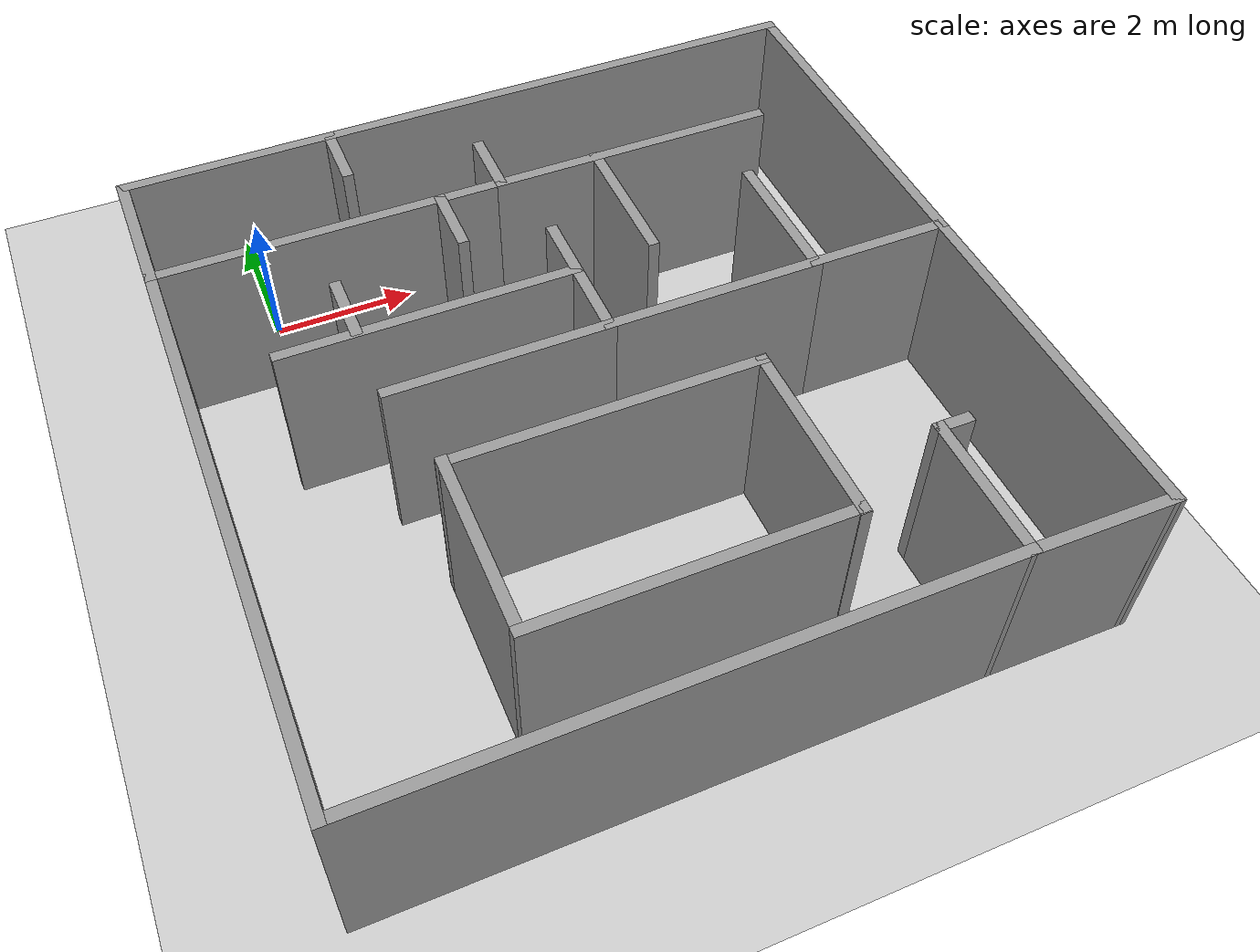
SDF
<sdf version="1.7">
 <world name="default">
  <light name="sun" type="directional">
   <pose>0 0 10 0 -0 0</pose>
   <diffuse>0.8 0.8 0.8 1</diffuse>
   <specular>0.2 0.2 0.2 1</specular>
   <attenuation>
    <range>1000</range>
    <constant>0.9</constant>
    <linear>0.01</linear>
    <quadratic>0.001</quadratic>
   </attenuation>
   <direction>-0.5 0.1 -0.9</direction>
   <spot><inner_angle>0</inner_angle><outer_angle>0</outer_angle><falloff>0</falloff></spot>
  </light>
  <model name="ground_plane">
   <static>1</static>
   <link name="link">
    <collision name="collision">
     <geometry><plane><normal>0 0 1</normal><size>100 100</size></plane></geometry>
     <surface><friction><ode><mu>100</mu><mu2>50</mu2></ode></friction></surface>
    </collision>
    <visual name="visual">
     <cast_shadows>0</cast_shadows>
     <geometry><plane><normal>0 0 1</normal><size>100 100</size></plane></geometry>
     <material>
      <script><uri>file://media/materials/scripts/gazebo.material</uri><name>Gazebo/Grey</name></script>
     </material>
    </visual>
   </link>
  </model>
  <gravity>0 0 -9.8</gravity>
  <magnetic_field>6e-06 2.3e-05 -4.2e-05</magnetic_field>
  <atmosphere type="adiabatic"/>
  <physics type="ode">
   <max_step_size>0.001</max_step_size>
   <real_time_factor>1</real_time_factor>
   <real_time_update_rate>1000</real_time_update_rate>
  </physics>
  <scene><ambient>0.4 0.4 0.4 1</ambient><background>0.7 0.7 0.7 1</background><shadows>1</shadows></scene>
  <spherical_coordinates>
   <surface_model>EARTH_WGS84</surface_model>
   <latitude_deg>0</latitude_deg>
   <longitude_deg>0</longitude_deg>
   <elevation>0</elevation>
   <heading_deg>0</heading_deg>
  </spherical_coordinates>
  <model name="Map">
   <pose>3.35876 -3.9583 0 0 0 -1.5697</pose>
   <link name="Wall_10">
    <collision name="Wall_10_Collision">
     <geometry><box><size>3 0.15 2.5</size></box></geometry>
     <pose>0 0 1.25 0 -0 0</pose>
    </collision>
    <visual name="Wall_10_Visual">
     <pose>0 0 1.25 0 -0 0</pose>
     <geometry><box><size>3 0.15 2.5</size></box></geometry>
     <material>
      <script><uri>file://media/materials/scripts/gazebo.material</uri><name>Gazebo/Grey</name></script>
      <ambient>1 1 1 1</ambient>
     </material>
     <meta><layer>0</layer></meta>
    </visual>
    <pose>-0.000462 1.57457 0 0 -0 -1.5708</pose>
   </link>
   <link name="Wall_11">
    <collision name="Wall_11_Collision">
     <geometry><box><size>2 0.15 2.5</size></box></geometry>
     <pose>0 0 1.25 0 -0 0</pose>
    </collision>
    <visual name="Wall_11_Visual">
     <pose>0 0 1.25 0 -0 0</pose>
     <geometry><box><size>2 0.15 2.5</size></box></geometry>
     <material>
      <script><uri>file://media/materials/scripts/gazebo.material</uri><name>Gazebo/Grey</name></script>
      <ambient>1 1 1 1</ambient>
     </material>
     <meta><layer>0</layer></meta>
    </visual>
    <pose>-0.925462 0.149572 0 0 -0 3.14159</pose>
   </link>
   <link name="Wall_13">
    <collision name="Wall_13_Collision">
     <geometry><box><size>3 0.15 2.5</size></box></geometry>
     <pose>0 0 1.25 0 -0 0</pose>
    </collision>
    <visual name="Wall_13_Visual">
     <pose>0 0 1.25 0 -0 0</pose>
     <geometry><box><size>3 0.15 2.5</size></box></geometry>
     <material>
      <script><uri>file://media/materials/scripts/gazebo.material</uri><name>Gazebo/Grey</name></script>
      <ambient>1 1 1 1</ambient>
     </material>
     <meta><layer>0</layer></meta>
    </visual>
    <pose>-0.000462 -1.27543 0 0 -0 -1.5708</pose>
   </link>
   <link name="Wall_15">
    <collision name="Wall_15_Collision">
     <geometry><box><size>2 0.15 2.5</size></box></geometry>
     <pose>0 0 1.25 0 -0 0</pose>
    </collision>
    <visual name="Wall_15_Visual">
     <pose>0 0 1.25 0 -0 0</pose>
     <geometry><box><size>2 0.15 2.5</size></box></geometry>
     <material>
      <script><uri>file://media/materials/scripts/gazebo.material</uri><name>Gazebo/Grey</name></script>
      <ambient>1 1 1 1</ambient>
     </material>
     <meta><layer>0</layer></meta>
    </visual>
    <pose>-3.92546 -4.85043 0 0 -0 0</pose>
   </link>
   <link name="Wall_16">
    <collision name="Wall_16_Collision">
     <geometry><box><size>4 0.15 2.5</size></box></geometry>
     <pose>0 0 1.25 0 -0 0</pose>
    </collision>
    <visual name="Wall_16_Visual">
     <pose>0 0 1.25 0 -0 0</pose>
     <geometry><box><size>4 0.15 2.5</size></box></geometry>
     <material>
      <script><uri>file://media/materials/scripts/gazebo.material</uri><name>Gazebo/Grey</name></script>
      <ambient>1 1 1 1</ambient>
     </material>
     <meta><layer>0</layer></meta>
    </visual>
    <pose>-3.00046 -2.92543 0 0 -0 1.5708</pose>
   </link>
   <link name="Wall_17">
    <collision name="Wall_17_Collision">
     <geometry><box><size>1 0.15 2.5</size></box></geometry>
     <pose>0 0 1.25 0 -0 0</pose>
    </collision>
    <visual name="Wall_17_Visual">
     <pose>0 0 1.25 0 -0 0</pose>
     <geometry><box><size>1 0.15 2.5</size></box></geometry>
     <material>
      <script><uri>file://media/materials/scripts/gazebo.material</uri><name>Gazebo/Grey</name></script>
      <ambient>1 1 1 1</ambient>
     </material>
     <meta><layer>0</layer></meta>
    </visual>
    <pose>-2.57546 -1.00043 0 0 -0 0</pose>
   </link>
   <link name="Wall_19">
    <collision name="Wall_19_Collision">
     <geometry><box><size>1 0.15 2.5</size></box></geometry>
     <pose>0 0 1.25 0 -0 0</pose>
    </collision>
    <visual name="Wall_19_Visual">
     <pose>0 0 1.25 0 -0 0</pose>
     <geometry><box><size>1 0.15 2.5</size></box></geometry>
     <material>
      <script><uri>file://media/materials/scripts/gazebo.material</uri><name>Gazebo/Grey</name></script>
      <ambient>1 1 1 1</ambient>
     </material>
     <meta><layer>0</layer></meta>
    </visual>
    <pose>-3.00046 -0.575428 0 0 -0 1.5708</pose>
   </link>
   <link name="Wall_2">
    <collision name="Wall_2_Collision">
     <geometry><box><size>3 0.15 2.5</size></box></geometry>
     <pose>0 0 1.25 0 -0 0</pose>
    </collision>
    <visual name="Wall_2_Visual">
     <pose>0 0 1.25 0 -0 0</pose>
     <geometry><box><size>3 0.15 2.5</size></box></geometry>
     <material>
      <script><uri>file://media/materials/scripts/gazebo.material</uri><name>Gazebo/Grey</name></script>
      <ambient>1 1 1 1</ambient>
     </material>
     <meta><layer>0</layer></meta>
    </visual>
    <pose>-4.85046 -3.42543 0 0 -0 1.5708</pose>
   </link>
   <link name="Wall_20">
    <collision name="Wall_20_Collision">
     <geometry><box><size>1 0.15 2.5</size></box></geometry>
     <pose>0 0 1.25 0 -0 0</pose>
    </collision>
    <visual name="Wall_20_Visual">
     <pose>0 0 1.25 0 -0 0</pose>
     <geometry><box><size>1 0.15 2.5</size></box></geometry>
     <material>
      <script><uri>file://media/materials/scripts/gazebo.material</uri><name>Gazebo/Grey</name></script>
      <ambient>1 1 1 1</ambient>
     </material>
     <meta><layer>0</layer></meta>
    </visual>
    <pose>-3.42546 -0.150427 0 0 -0 3.14159</pose>
   </link>
   <link name="Wall_22">
    <collision name="Wall_22_Collision">
     <geometry><box><size>4 0.15 2.5</size></box></geometry>
     <pose>0 0 1.25 0 -0 0</pose>
    </collision>
    <visual name="Wall_22_Visual">
     <pose>0 0 1.25 0 -0 0</pose>
     <geometry><box><size>4 0.15 2.5</size></box></geometry>
     <material>
      <script><uri>file://media/materials/scripts/gazebo.material</uri><name>Gazebo/Grey</name></script>
      <ambient>1 1 1 1</ambient>
     </material>
     <meta><layer>0</layer></meta>
    </visual>
    <pose>-3.00046 1.77457 0 0 -0 1.5708</pose>
   </link>
   <link name="Wall_27">
    <collision name="Wall_27_Collision">
     <geometry><box><size>2 0.15 2.5</size></box></geometry>
     <pose>0 0 1.25 0 -0 0</pose>
    </collision>
    <visual name="Wall_27_Visual">
     <pose>0 0 1.25 0 -0 0</pose>
     <geometry><box><size>2 0.15 2.5</size></box></geometry>
     <material>
      <script><uri>file://media/materials/scripts/gazebo.material</uri><name>Gazebo/Grey</name></script>
      <ambient>1 1 1 1</ambient>
     </material>
     <meta><layer>0</layer></meta>
    </visual>
    <pose>-2.08546 1.24457 0 0 -0 0</pose>
   </link>
   <link name="Wall_29">
    <collision name="Wall_29_Collision">
     <geometry><box><size>4 0.15 2.5</size></box></geometry>
     <pose>0 0 1.25 0 -0 0</pose>
    </collision>
    <visual name="Wall_29_Visual">
     <pose>0 0 1.25 0 -0 0</pose>
     <geometry><box><size>4 0.15 2.5</size></box></geometry>
     <material>
      <script><uri>file://media/materials/scripts/gazebo.material</uri><name>Gazebo/Grey</name></script>
      <ambient>1 1 1 1</ambient>
     </material>
     <meta><layer>0</layer></meta>
    </visual>
    <pose>-1.05546 -1.79593 0 0 -0 -1.5708</pose>
   </link>
   <link name="Wall_3">
    <collision name="Wall_3_Collision">
     <geometry><box><size>1 0.15 2.5</size></box></geometry>
     <pose>0 0 1.25 0 -0 0</pose>
    </collision>
    <visual name="Wall_3_Visual">
     <pose>0 0 1.25 0 -0 0</pose>
     <geometry><box><size>1 0.15 2.5</size></box></geometry>
     <material>
      <script><uri>file://media/materials/scripts/gazebo.material</uri><name>Gazebo/Grey</name></script>
      <ambient>1 1 1 1</ambient>
     </material>
     <meta><layer>0</layer></meta>
    </visual>
    <pose>-4.42546 -2.00043 0 0 -0 0</pose>
   </link>
   <link name="Wall_31">
    <collision name="Wall_31_Collision">
     <geometry><box><size>1 0.15 2.5</size></box></geometry>
     <pose>0 0 1.25 0 -0 0</pose>
    </collision>
    <visual name="Wall_31_Visual">
     <pose>0 0 1.25 0 -0 0</pose>
     <geometry><box><size>1 0.15 2.5</size></box></geometry>
     <material>
      <script><uri>file://media/materials/scripts/gazebo.material</uri><name>Gazebo/Grey</name></script>
      <ambient>1 1 1 1</ambient>
     </material>
     <meta><layer>0</layer></meta>
    </visual>
    <pose>-1.51496 -2.73443 0 0 -0 3.14159</pose>
   </link>
   <link name="Wall_33">
    <collision name="Wall_33_Collision">
     <geometry><box><size>7.977 0.15 2.5</size></box></geometry>
     <pose>0 0 1.25 0 -0 0</pose>
    </collision>
    <visual name="Wall_33_Visual">
     <pose>0 0 1.25 0 -0 0</pose>
     <geometry><box><size>7.977 0.15 2.5</size></box></geometry>
     <material>
      <script><uri>file://media/materials/scripts/gazebo.material</uri><name>Gazebo/Grey</name></script>
      <ambient>1 1 1 1</ambient>
     </material>
     <meta><layer>0</layer></meta>
    </visual>
    <pose>0.913038 -4.85043 0 0 -0 0</pose>
   </link>
   <link name="Wall_39">
    <collision name="Wall_39_Collision">
     <geometry><box><size>8 0.15 2.5</size></box></geometry>
     <pose>0 0 1.25 0 -0 0</pose>
    </collision>
    <visual name="Wall_39_Visual">
     <pose>0 0 1.25 0 -0 0</pose>
     <geometry><box><size>8 0.15 2.5</size></box></geometry>
     <material>
      <script><uri>file://media/materials/scripts/gazebo.material</uri><name>Gazebo/Grey</name></script>
      <ambient>1 1 1 1</ambient>
     </material>
     <meta><layer>0</layer></meta>
    </visual>
    <pose>4.82654 -0.925428 0 0 -0 1.5708</pose>
   </link>
   <link name="Wall_40">
    <collision name="Wall_40_Collision">
     <geometry><box><size>2 0.15 2.5</size></box></geometry>
     <pose>0 0 1.25 0 -0 0</pose>
    </collision>
    <visual name="Wall_40_Visual">
     <pose>0 0 1.25 0 -0 0</pose>
     <geometry><box><size>2 0.15 2.5</size></box></geometry>
     <material>
      <script><uri>file://media/materials/scripts/gazebo.material</uri><name>Gazebo/Grey</name></script>
      <ambient>1 1 1 1</ambient>
     </material>
     <meta><layer>0</layer></meta>
    </visual>
    <pose>3.90154 2.99957 0 0 -0 3.14159</pose>
   </link>
   <link name="Wall_41">
    <collision name="Wall_41_Collision">
     <geometry><box><size>0.5 0.15 2.5</size></box></geometry>
     <pose>0 0 1.25 0 -0 0</pose>
    </collision>
    <visual name="Wall_41_Visual">
     <pose>0 0 1.25 0 -0 0</pose>
     <geometry><box><size>0.5 0.15 2.5</size></box></geometry>
     <material>
      <script><uri>file://media/materials/scripts/gazebo.material</uri><name>Gazebo/Grey</name></script>
      <ambient>1 1 1 1</ambient>
     </material>
     <meta><layer>0</layer></meta>
    </visual>
    <pose>2.97654 3.17457 0 0 -0 1.5708</pose>
   </link>
   <link name="Wall_43">
    <collision name="Wall_43_Collision">
     <geometry><box><size>5 0.15 2.5</size></box></geometry>
     <pose>0 0 1.25 0 -0 0</pose>
    </collision>
    <visual name="Wall_43_Visual">
     <pose>0 0 1.25 0 -0 0</pose>
     <geometry><box><size>5 0.15 2.5</size></box></geometry>
     <material>
      <script><uri>file://media/materials/scripts/gazebo.material</uri><name>Gazebo/Grey</name></script>
      <ambient>1 1 1 1</ambient>
     </material>
     <meta><layer>0</layer></meta>
    </visual>
    <pose>2.42454 4.84957 0 0 -0 0</pose>
   </link>
   <link name="Wall_44">
    <collision name="Wall_44_Collision">
     <geometry><box><size>2 0.15 2.5</size></box></geometry>
     <pose>0 0 1.25 0 -0 0</pose>
    </collision>
    <visual name="Wall_44_Visual">
     <pose>0 0 1.25 0 -0 0</pose>
     <geometry><box><size>2 0.15 2.5</size></box></geometry>
     <material>
      <script><uri>file://media/materials/scripts/gazebo.material</uri><name>Gazebo/Grey</name></script>
      <ambient>1 1 1 1</ambient>
     </material>
     <meta><layer>0</layer></meta>
    </visual>
    <pose>4.83804 3.92457 0 0 -0 -1.58323</pose>
   </link>
   <link name="Wall_46">
    <collision name="Wall_46_Collision">
     <geometry><box><size>2.53713 0.15 2.5</size></box></geometry>
     <pose>0 0 1.25 0 -0 0</pose>
    </collision>
    <visual name="Wall_46_Visual">
     <pose>0 0 1.25 0 -0 0</pose>
     <geometry><box><size>2.53713 0.15 2.5</size></box></geometry>
     <material>
      <script><uri>file://media/materials/scripts/gazebo.material</uri><name>Gazebo/Grey</name></script>
      <ambient>1 1 1 1</ambient>
     </material>
     <meta><layer>0</layer></meta>
    </visual>
    <pose>2.45305 1.60567 0 0 -0 0</pose>
   </link>
   <link name="Wall_47">
    <collision name="Wall_47_Collision">
     <geometry><box><size>4.17063 0.15 2.5</size></box></geometry>
     <pose>0 0 1.25 0 -0 0</pose>
    </collision>
    <visual name="Wall_47_Visual">
     <pose>0 0 1.25 0 -0 0</pose>
     <geometry><box><size>4.17063 0.15 2.5</size></box></geometry>
     <material>
      <script><uri>file://media/materials/scripts/gazebo.material</uri><name>Gazebo/Grey</name></script>
      <ambient>1 1 1 1</ambient>
     </material>
     <meta><layer>0</layer></meta>
    </visual>
    <pose>3.63339 -0.40464 0 0 -0 -1.5708</pose>
   </link>
   <link name="Wall_48">
    <collision name="Wall_48_Collision">
     <geometry><box><size>2.53713 0.15 2.5</size></box></geometry>
     <pose>0 0 1.25 0 -0 0</pose>
    </collision>
    <visual name="Wall_48_Visual">
     <pose>0 0 1.25 0 -0 0</pose>
     <geometry><box><size>2.53713 0.15 2.5</size></box></geometry>
     <material>
      <script><uri>file://media/materials/scripts/gazebo.material</uri><name>Gazebo/Grey</name></script>
      <ambient>1 1 1 1</ambient>
     </material>
     <meta><layer>0</layer></meta>
    </visual>
    <pose>2.4266 -2.41495 0 0 -0 3.14159</pose>
   </link>
   <link name="Wall_49">
    <collision name="Wall_49_Collision">
     <geometry><box><size>4.17063 0.15 2.5</size></box></geometry>
     <pose>0 0 1.25 0 -0 0</pose>
    </collision>
    <visual name="Wall_49_Visual">
     <pose>0 0 1.25 0 -0 0</pose>
     <geometry><box><size>4.17063 0.15 2.5</size></box></geometry>
     <material>
      <script><uri>file://media/materials/scripts/gazebo.material</uri><name>Gazebo/Grey</name></script>
      <ambient>1 1 1 1</ambient>
     </material>
     <meta><layer>0</layer></meta>
    </visual>
    <pose>1.24626 -0.40464 0 0 -0 1.5708</pose>
   </link>
   <link name="Wall_5">
    <collision name="Wall_5_Collision">
     <geometry><box><size>7 0.15 2.5</size></box></geometry>
     <pose>0 0 1.25 0 -0 0</pose>
    </collision>
    <visual name="Wall_5_Visual">
     <pose>0 0 1.25 0 -0 0</pose>
     <geometry><box><size>7 0.15 2.5</size></box></geometry>
     <material>
      <script><uri>file://media/materials/scripts/gazebo.material</uri><name>Gazebo/Grey</name></script>
      <ambient>1 1 1 1</ambient>
     </material>
     <meta><layer>0</layer></meta>
    </visual>
    <pose>-4.85046 1.42457 0 0 -0 1.5708</pose>
   </link>
   <link name="Wall_6">
    <collision name="Wall_6_Collision">
     <geometry><box><size>5 0.15 2.5</size></box></geometry>
     <pose>0 0 1.25 0 -0 0</pose>
    </collision>
    <visual name="Wall_6_Visual">
     <pose>0 0 1.25 0 -0 0</pose>
     <geometry><box><size>5 0.15 2.5</size></box></geometry>
     <material>
      <script><uri>file://media/materials/scripts/gazebo.material</uri><name>Gazebo/Grey</name></script>
      <ambient>1 1 1 1</ambient>
     </material>
     <meta><layer>0</layer></meta>
    </visual>
    <pose>-2.42546 4.84957 0 0 -0 0</pose>
   </link>
   <link name="Wall_7">
    <collision name="Wall_7_Collision">
     <geometry><box><size>2 0.15 2.5</size></box></geometry>
     <pose>0 0 1.25 0 -0 0</pose>
    </collision>
    <visual name="Wall_7_Visual">
     <pose>0 0 1.25 0 -0 0</pose>
     <geometry><box><size>2 0.15 2.5</size></box></geometry>
     <material>
      <script><uri>file://media/materials/scripts/gazebo.material</uri><name>Gazebo/Grey</name></script>
      <ambient>1 1 1 1</ambient>
     </material>
     <meta><layer>0</layer></meta>
    </visual>
    <pose>-0.000462 3.92457 0 0 -0 -1.5708</pose>
   </link>
   <link name="Wall_8">
    <collision name="Wall_8_Collision">
     <geometry><box><size>2 0.15 2.5</size></box></geometry>
     <pose>0 0 1.25 0 -0 0</pose>
    </collision>
    <visual name="Wall_8_Visual">
     <pose>0 0 1.25 0 -0 0</pose>
     <geometry><box><size>2 0.15 2.5</size></box></geometry>
     <material>
      <script><uri>file://media/materials/scripts/gazebo.material</uri><name>Gazebo/Grey</name></script>
      <ambient>1 1 1 1</ambient>
     </material>
     <meta><layer>0</layer></meta>
    </visual>
    <pose>-0.925462 2.99957 0 0 -0 3.14159</pose>
   </link>
   <static>1</static>
  </model>
 </world>
</sdf>
